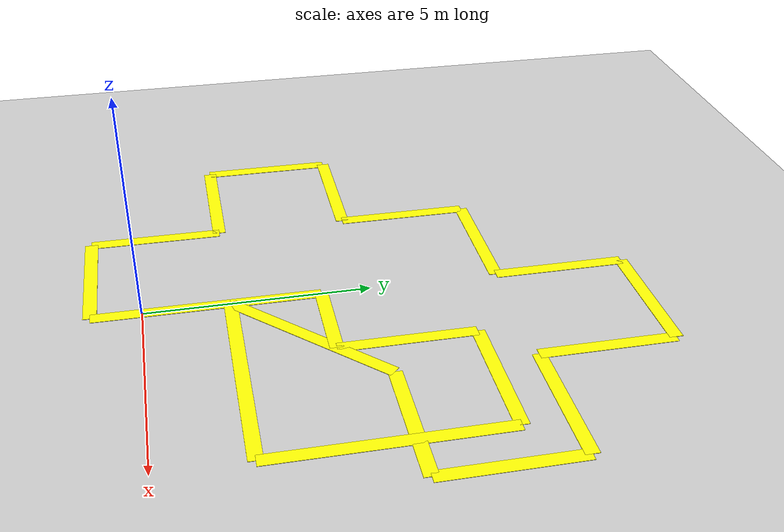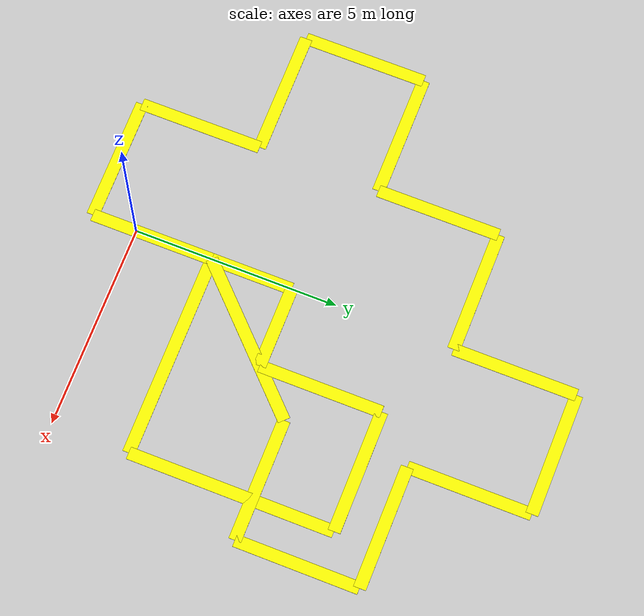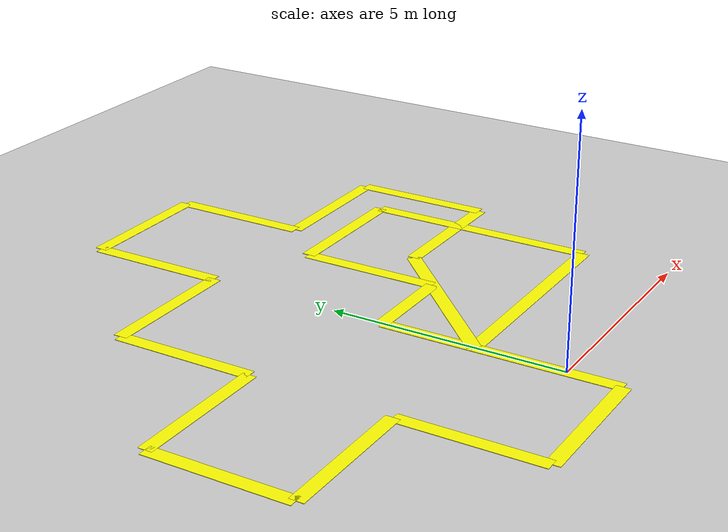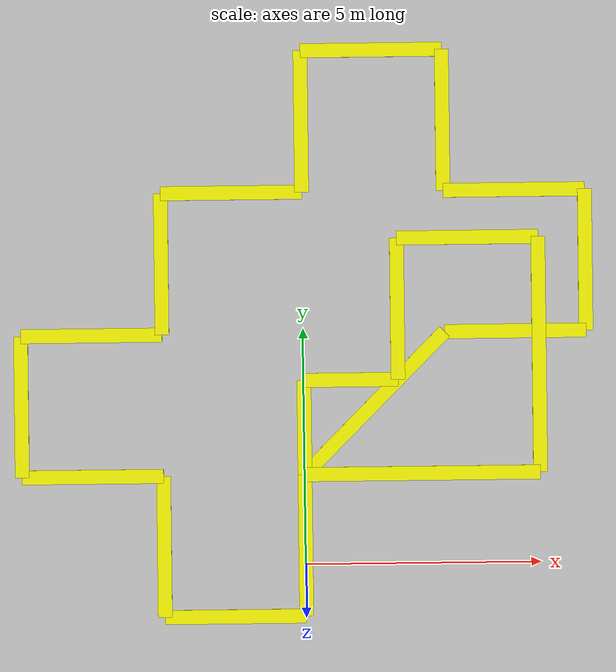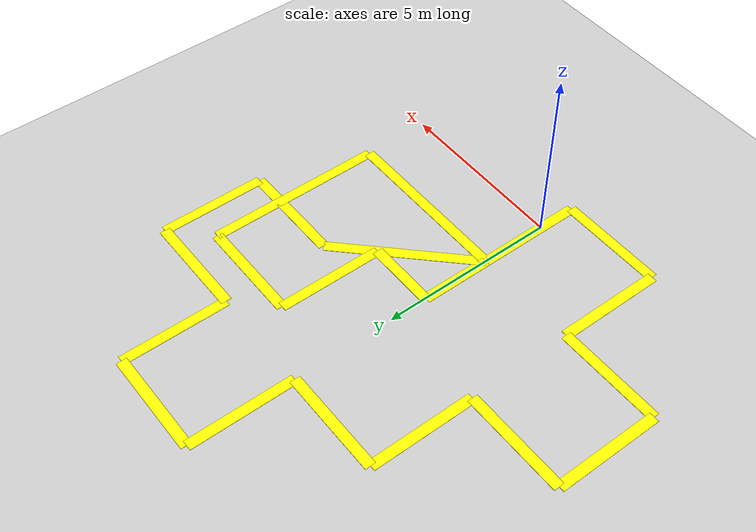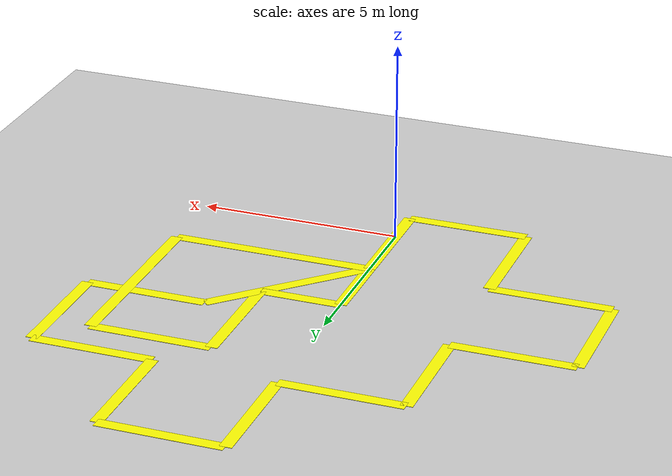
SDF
<?xml version="1.0"?>
<sdf version="1.6">
  <world name="default">

    <include>
      <uri>model://ground_plane</uri>
    </include>

    <include>
      <uri>model://sun</uri>
    </include>

    <scene>
      <shadows>false</shadows>
    </scene>

    <gui fullscreen='0'>
      <camera name='user_camera'>
        <pose frame=''>0.319654 -0.235002 9.29441 0 1.5138 0.009599</pose>
        <view_controller>orbit</view_controller>
        <projection_type>perspective</projection_type>
      </camera>
    </gui>

    <physics type="ode">
      <real_time_update_rate>1000.0</real_time_update_rate>
      <max_step_size>0.001</max_step_size>
      <real_time_factor>1</real_time_factor>
      <ode>
        <solver>
          <type>quick</type>
          <iters>150</iters>
          <precon_iters>0</precon_iters>
          <sor>1.400000</sor>
          <use_dynamic_moi_rescaling>1</use_dynamic_moi_rescaling>
        </solver>
        <constraints>
          <cfm>0.00001</cfm>
          <erp>0.2</erp>
          <contact_max_correcting_vel>2000.000000</contact_max_correcting_vel>
          <contact_surface_layer>0.01000</contact_surface_layer>
        </constraints>
      </ode>
    </physics>

    <model name="Track2">
      <static>1</static>
      <include>
        <pose>0 1.9 0.002 0.0 0.0 0.0</pose>
        <uri>model://track2</uri>
      </include>
    </model>

  </world>
</sdf>

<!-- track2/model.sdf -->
<sdf version="1.6">
  <model name="yellow_line_track">
    <static>true</static>
    <link name="track_link">
      <!-- Horizontal segment from (0,0) to (5,0) -->
      <visual name="segment1">
        <pose>2.5 0 0.005 0 0 0</pose>
        <geometry>
          <box>
            <size>5 0.3 0.01</size>
          </box>
        </geometry>
        <material>
          <ambient>1 1 0 1</ambient>
          <diffuse>1 1 0 1</diffuse>
        </material>
      </visual>

      <!-- Vertical segment from (5,0) to (5,5) -->
      <visual name="segment2">
        <pose>5 2.5 0.005 0 0 1.5708</pose>
        <geometry>
          <box>
            <size>5 0.3 0.01</size>
          </box>
        </geometry>
        <material>
          <ambient>1 1 0 1</ambient>
          <diffuse>1 1 0 1</diffuse>
        </material>
      </visual>

      <!-- Horizontal segment from (5,5) to (2,5) -->
      <visual name="segment3">
        <pose>3.5 5 0.005 0 0 0</pose>
        <geometry>
          <box>
            <size>3 0.3 0.01</size>
          </box>
        </geometry>
        <material>
          <ambient>1 1 0 1</ambient>
          <diffuse>1 1 0 1</diffuse>
        </material>
      </visual>

      <!-- Vertical segment from (2,5) to (2,2) -->
      <visual name="segment4">
        <pose>2 3.5 0.005 0 0 1.5708</pose>
        <geometry>
          <box>
            <size>3 0.3 0.01</size>
          </box>
        </geometry>
        <material>
          <ambient>1 1 0 1</ambient>
          <diffuse>1 1 0 1</diffuse>
        </material>
      </visual>

      <!-- Horizontal segment from (2,2) to (0,2) -->
      <visual name="segment5">
        <pose>1 2 0.005 0 0 0</pose>
        <geometry>
          <box>
            <size>2 0.3 0.01</size>
          </box>
        </geometry>
        <material>
          <ambient>1 1 0 1</ambient>
          <diffuse>1 1 0 1</diffuse>
        </material>
      </visual>

      <!-- Vertical segment from (0,2) to (0,0) -->
      <visual name="segment6">
        <pose>0 1 0.005 0 0 1.5708</pose>
        <geometry>
          <box>
            <size>2 0.3 0.01</size>
          </box>
        </geometry>
        <material>
          <ambient>1 1 0 1</ambient>
          <diffuse>1 1 0 1</diffuse>
        </material>
      </visual>

      <!-- Additional segments to make the track longer and more complex -->

      <!-- Diagonal segment from (0,0) to (3,3) -->
      <visual name="segment7">
        <pose>1.5 1.5 0.005 0 0 0.7854</pose>  <!-- 45-degree rotation -->
        <geometry>
          <box>
            <size>4.242 0.3 0.01</size>  <!-- Length calculated using Pythagorean theorem -->
          </box>
        </geometry>
        <material>
          <ambient>1 1 0 1</ambient>
          <diffuse>1 1 0 1</diffuse>
        </material>
      </visual>

      <!-- Horizontal segment from (3,3) to (6,3) -->
      <visual name="segment8">
        <pose>4.5 3 0.005 0 0 0</pose>
        <geometry>
          <box>
            <size>3 0.3 0.01</size>
          </box>
        </geometry>
        <material>
          <ambient>1 1 0 1</ambient>
          <diffuse>1 1 0 1</diffuse>
        </material>
      </visual>

      <!-- Vertical segment from (6,3) to (6,6) -->
      <visual name="segment9">
        <pose>6 4.5 0.005 0 0 1.5708</pose>
        <geometry>
          <box>
            <size>3 0.3 0.01</size>
          </box>
        </geometry>
        <material>
          <ambient>1 1 0 1</ambient>
          <diffuse>1 1 0 1</diffuse>
        </material>
      </visual>

      <!-- Horizontal segment from (6,6) to (3,6) -->
      <visual name="segment10">
        <pose>4.5 6 0.005 0 0 0</pose>
        <geometry>
          <box>
            <size>3 0.3 0.01</size>
          </box>
        </geometry>
        <material>
          <ambient>1 1 0 1</ambient>
          <diffuse>1 1 0 1</diffuse>
        </material>
      </visual>

      <!-- Vertical segment from (3,6) to (3,9) -->
      <visual name="segment11">
        <pose>3 7.5 0.005 0 0 1.5708</pose>
        <geometry>
          <box>
            <size>3 0.3 0.01</size>
          </box>
        </geometry>
        <material>
          <ambient>1 1 0 1</ambient>
          <diffuse>1 1 0 1</diffuse>
        </material>
      </visual>

      <!-- Horizontal segment from (3,9) to (0,9) -->
      <visual name="segment12">
        <pose>1.5 9 0.005 0 0 0</pose>
        <geometry>
          <box>
            <size>3 0.3 0.01</size>
          </box>
        </geometry>
        <material>
          <ambient>1 1 0 1</ambient>
          <diffuse>1 1 0 1</diffuse>
        </material>
      </visual>

      <!-- Vertical segment from (0,9) to (0,6) -->
      <visual name="segment13">
        <pose>0 7.5 0.005 0 0 1.5708</pose>
        <geometry>
          <box>
            <size>3 0.3 0.01</size>
          </box>
        </geometry>
        <material>
          <ambient>1 1 0 1</ambient>
          <diffuse>1 1 0 1</diffuse>
        </material>
      </visual>

      <!-- Horizontal segment from (0,6) to (-3,6) -->
      <visual name="segment14">
        <pose>-1.5 6 0.005 0 0 0</pose>
        <geometry>
          <box>
            <size>3 0.3 0.01</size>
          </box>
        </geometry>
        <material>
          <ambient>1 1 0 1</ambient>
          <diffuse>1 1 0 1</diffuse>
        </material>
      </visual>

      <!-- Vertical segment from (-3,6) to (-3,3) -->
      <visual name="segment15">
        <pose>-3 4.5 0.005 0 0 1.5708</pose>
        <geometry>
          <box>
            <size>3 0.3 0.01</size>
          </box>
        </geometry>
        <material>
          <ambient>1 1 0 1</ambient>
          <diffuse>1 1 0 1</diffuse>
        </material>
      </visual>

      <!-- Horizontal segment from (-3,3) to (-6,3) -->
      <visual name="segment16">
        <pose>-4.5 3 0.005 0 0 0</pose>
        <geometry>
          <box>
            <size>3 0.3 0.01</size>
          </box>
        </geometry>
        <material>
          <ambient>1 1 0 1</ambient>
          <diffuse>1 1 0 1</diffuse>
        </material>
      </visual>

      <!-- Vertical segment from (-6,3) to (-6,0) -->
      <visual name="segment17">
        <pose>-6 1.5 0.005 0 0 1.5708</pose>
        <geometry>
          <box>
            <size>3 0.3 0.01</size>
          </box>
        </geometry>
        <material>
          <ambient>1 1 0 1</ambient>
          <diffuse>1 1 0 1</diffuse>
        </material>
      </visual>

      <!-- Horizontal segment from (-6,0) to (-3,0) -->
      <visual name="segment18">
        <pose>-4.5 0 0.005 0 0 0</pose>
        <geometry>
          <box>
            <size>3 0.3 0.01</size>
          </box>
        </geometry>
        <material>
          <ambient>1 1 0 1</ambient>
          <diffuse>1 1 0 1</diffuse>
        </material>
      </visual>

      <!-- Vertical segment from (-3,0) to (-3,-3) -->
      <visual name="segment19">
        <pose>-3 -1.5 0.005 0 0 1.5708</pose>
        <geometry>
          <box>
            <size>3 0.3 0.01</size>
          </box>
        </geometry>
        <material>
          <ambient>1 1 0 1</ambient>
          <diffuse>1 1 0 1</diffuse>
        </material>
      </visual>

      <!-- Horizontal segment from (-3,-3) to (0,-3) -->
      <visual name="segment20">
        <pose>-1.5 -3 0.005 0 0 0</pose>
        <geometry>
          <box>
            <size>3 0.3 0.01</size>
          </box>
        </geometry>
        <material>
          <ambient>1 1 0 1</ambient>
          <diffuse>1 1 0 1</diffuse>
        </material>
      </visual>

      <!-- Vertical segment from (0,-3) to (0,0) -->
      <visual name="segment21">
        <pose>0 -1.5 0.005 0 0 1.5708</pose>
        <geometry>
          <box>
            <size>3 0.3 0.01</size>
          </box>
        </geometry>
        <material>
          <ambient>1 1 0 1</ambient>
          <diffuse>1 1 0 1</diffuse>
        </material>
      </visual>
    </link>
  </model>
</sdf>
